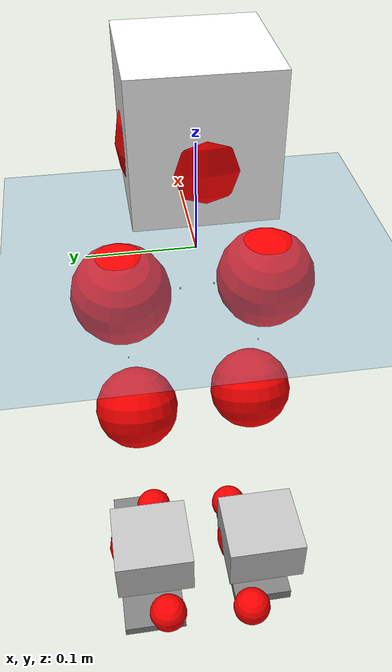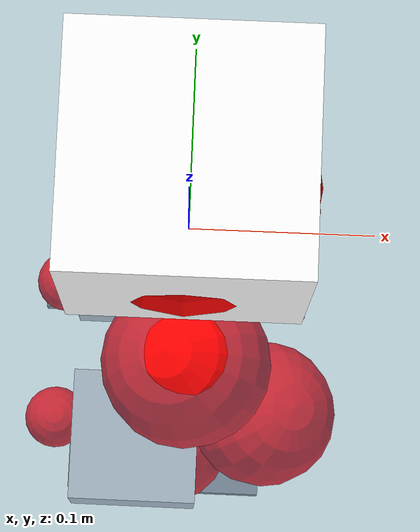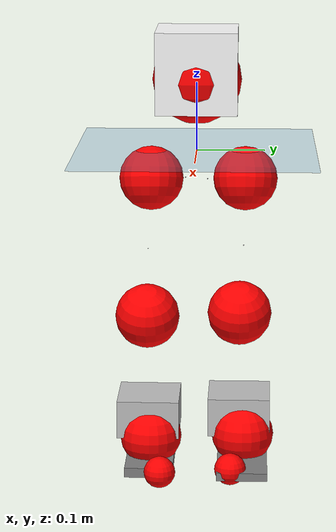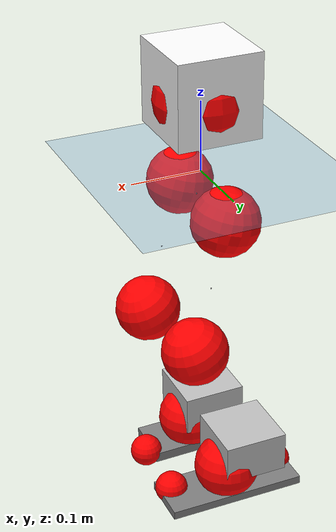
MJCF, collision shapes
<mujoco model="pi_12dof_release_v1">
  <compiler angle="radian" assetdir="assets" balanceinertia="true" inertiafromgeom="false"/>

  <option timestep="0.005" density="1.2" viscosity="2e-05"/>

  <size nkey="1"/>

  <visual>
    <quality shadowsize="8192"/>
    <map shadowclip="0.5"/>
  </visual>

  <default>
    <default class="/">
      <joint armature="0.01" damping="0.01" frictionloss="0.01"/>
      <geom contype="0" conaffinity="0" group="1" solref="-1000 -80"/>
      <site size="0.01 0.005 0.005" group="5"/>
      <general forcelimited="true" biastype="affine" gainprm="20" biasprm="0 -20 -0.5"/>
      <default class="foot">
        <geom size="0.0845 0.036 0.005" type="box" condim="6" group="4" priority="1" friction="0.9 0.2 0.2" solimp="0.015 1 0.005"/>
      </default>
      <default class="reward_collision_sphere">
        <geom group="5" rgba="1 0 0 1"/>
      </default>
    </default>
  </default>

  <asset>
    <texture type="skybox" colorspace="auto" name="//unnamed_texture_0" builtin="gradient" rgb1="0.95 0.95 0.95" rgb2="0.95 0.95 0.95" width="100" height="600"/>
    <texture type="2d" colorspace="auto" name="texplane" builtin="checker" rgb1="0.345 0.575 0.748" rgb2="0.345 0.575 0.748" markrgb="1 1 1" width="512" height="512"/>
    <material name="MatPlane" class="/" texture="texplane" texuniform="true" texrepeat="2 2" specular="0.9"/>
    <mesh name="baselink_1" class="/" file="baselink_1.STL"/>
    <mesh name="r_hip_pitch_link" class="/" file="r_hip_pitch_link.STL"/>
    <mesh name="r_hip_roll_link" class="/" file="r_hip_roll_link.STL"/>
    <mesh name="r_thigh_link" class="/" file="r_thigh_link.STL"/>
    <mesh name="r_calf_link" class="/" file="r_calf_link.STL"/>
    <mesh name="r_ankle_pitch_link" class="/" file="r_ankle_pitch_link.STL"/>
    <mesh name="r_ankle_roll_link" class="/" file="r_ankle_roll_link.STL"/>
    <mesh name="l_hip_pitch_link" class="/" file="l_hip_pitch_link.STL"/>
    <mesh name="l_hip_roll_link" class="/" file="l_hip_roll_link.STL"/>
    <mesh name="l_thigh_link" class="/" file="l_thigh_link.STL"/>
    <mesh name="l_calf_link" class="/" file="l_calf_link.STL"/>
    <mesh name="l_ankle_pitch_link" class="/" file="l_ankle_pitch_link.STL"/>
    <mesh name="l_ankle_roll_link" class="/" file="l_ankle_roll_link.STL"/>
  </asset>

  <worldbody>
    <geom name="floor" class="/" size="100 100 0.125" type="plane" group="0" material="MatPlane"/>
    <light name="toplight_shadow" class="/" pos="0 0 5" dir="0.0990148 0.0990148 -0.990148" type="directional" ambient="0.04 0.04 0.04" diffuse="0.55 0.55 0.55" specular="0.12 0.12 0.12"/>
    <light name="toplight_fill" class="/" pos="0 0 5" dir="0.0990148 0.0990148 -0.990148" type="directional" castshadow="false" ambient="0.04 0.04 0.04" diffuse="0.3 0.3 0.3" specular="0.08 0.08 0.08"/>
    <body name="trunk" pos="-0.000483649 0.000302767 0.0043896" quat="1 -0.000850065 -2.73423e-05 -8.47852e-05">
      <inertial pos="0.00507619 -0.00805188 0.0523953" quat="0.694792 0.010566 0.00846987 0.719084" mass="3.70797" diaginertia="0.0266989 0.00483899 0.0252182"/>
      <joint name="//unnamed_joint_0" type="free"/>
      <geom name="//unnamed_geom_1" class="/" type="mesh" density="0" rgba="1 1 1 1" mesh="baselink_1"/>
      <geom name="//unnamed_geom_2" class="/" size="0.0591319 0.0591319 0.0591319" pos="0 0 0.114743" type="box" rgba="1 1 1 1"/>
      <geom name="//unnamed_geom_3" class="reward_collision_sphere" size="0.065045" pos="0 0 0.1004"/>
      <site name="imu" class="/" pos="-0.00122446 0.0124536 -0.00280513" size="0.0118264"/>
      <camera name="track" class="/" pos="0 -1.7497 0" quat="0.707107 0.707107 0 0" mode="trackcom"/>
      <camera name="ego_camera" class="/" pos="0.0929081 0 0.258172" quat="-0.5 -0.5 0.5 0.5"/>
      <body name="r_hip_pitch_link" pos="-0.000574217 -0.0168504 -0.04548" quat="0.992172 0.000289873 -0.124877 -7.85993e-05">
        <inertial pos="0.00757888 -0.0515746 0.00175831" quat="-0.0208991 0.70645 -0.0196551 0.707181" mass="0.604194" diaginertia="0.000315248 5.14612e-05 0.000484864"/>
        <joint name="r_hip_pitch_joint" class="/" pos="0 0 0" axis="0.0242293 -0.999162 0.0329788" range="-1.78096 1.32883" armature="0.013388" damping="0.0225851" frictionloss="0.0147428"/>
        <geom name="//unnamed_geom_4" class="/" type="mesh" density="0" rgba="0.75294 0.75294 0.75294 1" mesh="r_hip_pitch_link"/>
        <geom name="//unnamed_geom_5" class="/" size="0.000591319 0.000591319 0.000591319" type="box" rgba="0.75294 0.75294 0.75294 1"/>
        <body name="r_hip_roll_link" pos="0.00218454 -0.0504297 -0.00153609" quat="1 4.5754e-06 2.87512e-06 -3.13501e-06">
          <inertial pos="-0.00180467 -0.0024028 -0.0847351" quat="0.705123 -0.079333 -0.0734624 0.700794" mass="0.705405" diaginertia="0.000956096 0.000144599 0.000940302"/>
          <joint name="r_hip_roll_joint" class="/" pos="0 0 0" axis="-0.999675 -0.0221105 -0.0126627" stiffness="0.00828349" range="-0.11446 0.455993" armature="0.0108124" damping="0.0604206" frictionloss="0.0102278"/>
          <geom name="//unnamed_geom_6" class="/" type="mesh" density="0" rgba="0.75294 0.75294 0.75294 1" mesh="r_hip_roll_link"/>
          <geom name="//unnamed_geom_7" class="/" size="0.000591319 0.000591319 0.000591319" type="box" rgba="0.75294 0.75294 0.75294 1"/>
          <geom name="//unnamed_geom_8" class="reward_collision_sphere" size="0.0473055"/>
          <body name="r_thigh_link" pos="0.00122695 -0.00410095 -0.104561" quat="0.999993 -0.00287927 0.00238891 -0.000313744">
            <inertial pos="-0.00101234 0.000750019 -0.0697269" quat="0.738813 0.673909 -0.000507197 0.000961149" mass="0.19877" diaginertia="0.000361944 5.04034e-05 0.000382193"/>
            <joint name="r_thigh_joint" class="/" pos="0 0 0" axis="-0.000578269 1.52478e-05 -1" range="-0.309558 0.681297" armature="0.00829714" damping="0.00390816" frictionloss="0.0125416"/>
            <geom name="//unnamed_geom_9" class="/" type="mesh" density="0" rgba="0.75294 0.75294 0.75294 1" mesh="r_thigh_link"/>
            <geom name="//unnamed_geom_10" class="/" size="0.000591319 0.000591319 0.000591319" type="box" rgba="0.75294 0.75294 0.75294 1"/>
            <body name="r_calf_link" pos="-0.000632796 0.000490886 -0.0992839" quat="0.94673 -2.02185e-05 0.322028 -0.00038468">
              <inertial pos="-0.00250524 0.000856931 -0.101694" quat="0.999976 -0.00294809 0.00269665 0.00569519" mass="1.46859" diaginertia="0.010894 0.00199772 0.00104953"/>
              <joint name="r_calf_joint" class="/" pos="0 0 0" axis="-0.026689 -0.998938 0.0375476" range="-1.62583 0.639715" armature="0.011811" damping="0.0142935" frictionloss="0.0115754"/>
              <geom name="//unnamed_geom_11" class="/" type="mesh" density="0" rgba="0.75294 0.75294 0.75294 1" mesh="r_calf_link"/>
              <geom name="//unnamed_geom_12" class="/" size="0.000591319 0.000591319 0.000591319" type="box" rgba="0.75294 0.75294 0.75294 1"/>
              <geom name="//unnamed_geom_13" class="reward_collision_sphere" size="0.0473055"/>
              <body name="r_ankle_pitch_link" pos="-0.00901654 -0.00262398 -0.19998" quat="0.980064 3.28928e-05 -0.198681 0.000107178">
                <inertial pos="0.00671779 0.00128289 -1.88232e-05" quat="0.00262914 0.706703 -0.00388663 0.707495" mass="0.263678" diaginertia="0.000869263 0.000102106 0.0006546"/>
                <joint name="r_ankle_pitch_joint" class="/" pos="0 0 0" axis="0.00589018 -0.999964 -0.00610965" stiffness="0.0080369" range="-1.22623 0.475423" armature="0.0113246" damping="0" frictionloss="0.00813614"/>
                <geom name="//unnamed_geom_14" class="/" type="mesh" density="0" rgba="0.75294 0.75294 0.75294 1" mesh="r_ankle_pitch_link"/>
                <geom name="//unnamed_geom_15" class="/" size="0.0461228 0.0473055 0.0295659" type="box" rgba="0.75294 0.75294 0.75294 1"/>
                <body name="r_ankle_roll_link" pos="0.0852449 0.00373061 -0.00259242" quat="1 0.000545992 0.000114493 0.000368326">
                  <inertial pos="-0.0287098 -0.000876253 -0.0294407" quat="0.560112 0.431217 0.432528 0.559684" mass="0.965662" diaginertia="0.00318974 0.000519564 0.00169104"/>
                  <joint name="r_ankle_roll_joint" class="/" pos="0 0 0" axis="-0.99996 -0.00307882 -0.00835774" range="-0.112054 0.120229" armature="0.0118095" damping="0.00588802" frictionloss="0.006443"/>
                  <geom name="//unnamed_geom_16" class="/" type="mesh" density="0" rgba="0.75294 0.75294 0.75294 1" mesh="r_ankle_roll_link"/>
                  <geom name="//unnamed_geom_17" class="/" type="mesh" rgba="0.75294 0.75294 0.75294 1" mesh="r_ankle_roll_link"/>
                  <geom name="right_foot" class="foot" size="0.0732222 0.0362426 0.00742663" pos="-0.0631775 0 -0.0631086"/>
                  <geom name="//unnamed_geom_19" class="reward_collision_sphere" size="0.0473055" pos="-0.0619387 0 -0.0286857"/>
                  <geom name="//unnamed_geom_20" class="reward_collision_sphere" size="0.0236527" pos="0.0185816 0.017497 -0.0573715"/>
                  <geom name="//unnamed_geom_21" class="reward_collision_sphere" size="0.0236527" pos="-0.148653 0.017497 -0.0573715"/>
                  <site name="right_foot" class="foot" pos="-0.0631775 0 -0.0631086" size="0.0118264"/>
                </body>
              </body>
            </body>
          </body>
        </body>
      </body>
      <body name="l_hip_pitch_link" pos="-0.000503226 0.0154971 -0.047449" quat="0.99214 -0.000455769 -0.125131 0.000669408">
        <inertial pos="0.00291225 0.0537906 0.00130728" quat="-0.0201053 0.729425 0.060092 0.681119" mass="0.725593" diaginertia="0.000375041 5.15804e-05 0.000623998"/>
        <joint name="l_hip_pitch_joint" class="/" pos="0 0 0" axis="0.0136098 0.999885 0.00666908" range="-1.35599 1.89912" armature="0.00984483" damping="0" frictionloss="0.015396"/>
        <geom name="//unnamed_geom_22" class="/" type="mesh" density="0" rgba="0.75294 0.75294 0.75294 1" mesh="l_hip_pitch_link"/>
        <geom name="//unnamed_geom_23" class="/" size="0.000591319 0.000591319 0.000591319" type="box" rgba="0.75294 0.75294 0.75294 1"/>
        <body name="l_hip_roll_link" pos="-0.00115203 0.0560617 0.000952452" quat="0.999999 -0.000243043 -0.000559828 -0.000826428">
          <inertial pos="-0.00253077 0.00434775 -0.0872374" quat="0.697224 -0.0739184 -0.0798582 0.708546" mass="0.622067" diaginertia="0.000861877 0.000132685 0.00068881"/>
          <joint name="l_hip_roll_joint" class="/" pos="0 0 0" axis="-0.999975 0.000764507 -0.00700956" stiffness="0.00158426" range="-0.687978 0.271509" armature="0.0120256" damping="0" frictionloss="0.0130201"/>
          <geom name="//unnamed_geom_24" class="/" type="mesh" density="0" rgba="0.75294 0.75294 0.75294 1" mesh="l_hip_roll_link"/>
          <geom name="//unnamed_geom_25" class="/" size="0.000591319 0.000591319 0.000591319" type="box" rgba="0.75294 0.75294 0.75294 1"/>
          <geom name="//unnamed_geom_26" class="reward_collision_sphere" size="0.0473055"/>
          <body name="l_thigh_link" pos="-0.0050658 -0.00168913 -0.0987358" quat="0.999996 0.00043418 0.0022593 -0.00182625">
            <inertial pos="-0.00527144 -0.00105981 -0.064057" quat="0.675414 0.737438 -0.000554593 0.000730481" mass="0.177008" diaginertia="0.000318373 3.85459e-05 0.000269223"/>
            <joint name="l_thigh_joint" class="/" pos="0 0 0" axis="-0.003329 -0.000733377 -0.999994" stiffness="0.00422511" range="-0.589921 0.421786" armature="0.012665" damping="0" frictionloss="0.0144417"/>
            <geom name="//unnamed_geom_27" class="/" type="mesh" density="0" rgba="0.75294 0.75294 0.75294 1" mesh="l_thigh_link"/>
            <geom name="//unnamed_geom_28" class="/" size="0.000591319 0.000591319 0.000591319" type="box" rgba="0.75294 0.75294 0.75294 1"/>
            <body name="l_calf_link" pos="-0.00323845 -0.00510563 -0.100422" quat="0.948646 0.000132996 0.31634 -0.00085764">
              <inertial pos="0.00160851 0.00135368 -0.0985478" quat="0.999141 -0.00927254 -0.00637686 -0.039875" mass="1.39773" diaginertia="0.0103008 0.0019206 0.00111721"/>
              <joint name="l_calf_joint" class="/" pos="0 0 0" axis="-0.0104618 0.999906 0.00882873" range="-0.630118 1.6875" armature="0.0110036" damping="0.0122351" frictionloss="0.0139002"/>
              <geom name="//unnamed_geom_29" class="/" type="mesh" density="0" rgba="0.75294 0.75294 0.75294 1" mesh="l_calf_link"/>
              <geom name="//unnamed_geom_30" class="/" size="0.000591319 0.000591319 0.000591319" type="box" rgba="0.75294 0.75294 0.75294 1"/>
              <geom name="//unnamed_geom_31" class="reward_collision_sphere" size="0.0473055"/>
              <body name="l_ankle_pitch_link" pos="-0.000789918 -0.000424474 -0.192282" quat="0.980212 0.000733054 -0.197949 1.4424e-06">
                <inertial pos="0.0060937 -0.0103566 -0.00263913" quat="-0.0212666 0.712417 0.0194251 0.701165" mass="0.326523" diaginertia="0.000980201 0.000124899 0.000793762"/>
                <joint name="l_ankle_pitch_joint" class="/" pos="0 0 0" axis="-0.00523072 0.99924 -0.038617" range="-0.535925 1.32556" armature="0.0126219" damping="0.0364402" frictionloss="0.0112308"/>
                <geom name="//unnamed_geom_32" class="/" type="mesh" density="0" rgba="0.75294 0.75294 0.75294 1" mesh="l_ankle_pitch_link"/>
                <geom name="//unnamed_geom_33" class="/" size="0.0461228 0.0473055 0.0295659" type="box" rgba="0.75294 0.75294 0.75294 1"/>
                <body name="l_ankle_roll_link" pos="0.0891389 0.00580187 -0.00079412" quat="0.999997 -0.00151707 -0.00140669 0.00115061">
                  <inertial pos="-0.0312586 -0.00232814 -0.0206563" quat="0.546885 0.435177 0.468935 0.540034" mass="0.958884" diaginertia="0.00344334 0.000540246 0.00154915"/>
                  <joint name="l_ankle_roll_joint" class="/" pos="0 0 0" axis="-0.998857 0.0452449 0.015399" stiffness="0.00487426" range="-0.150108 0.350888" armature="0.0116795" damping="0.0187496" frictionloss="0.0173906"/>
                  <geom name="//unnamed_geom_34" class="/" type="mesh" density="0" rgba="0.75294 0.75294 0.75294 1" mesh="l_ankle_roll_link"/>
                  <geom name="//unnamed_geom_35" class="/" type="mesh" rgba="0.75294 0.75294 0.75294 1" mesh="l_ankle_roll_link"/>
                  <geom name="left_foot" class="foot" size="0.100878 0.0378479 0.00617006" pos="-0.0631775 0 -0.0631086"/>
                  <geom name="//unnamed_geom_37" class="reward_collision_sphere" size="0.0473055" pos="-0.0619387 0 -0.0286857"/>
                  <geom name="//unnamed_geom_38" class="reward_collision_sphere" size="0.0236527" pos="0.0185816 -0.017497 -0.0573715"/>
                  <geom name="//unnamed_geom_39" class="reward_collision_sphere" size="0.0236527" pos="-0.148653 -0.017497 -0.0573715"/>
                  <site name="left_foot" class="foot" pos="-0.0631775 0 -0.0631086" size="0.0118264"/>
                </body>
              </body>
            </body>
          </body>
        </body>
      </body>
    </body>
  </worldbody>

  <contact>
    <pair class="/" geom1="floor" geom2="right_foot" name="//unnamed_contact_1"/>
    <pair class="/" geom1="floor" geom2="left_foot" name="//unnamed_contact_0"/>
  </contact>

  <actuator>
    <general name="r_hip_pitch_joint" class="/" joint="r_hip_pitch_joint" forcerange="-28.9982 28.9982" gainprm="24.2374" biasprm="0 -24.2374 -0.613197"/>
    <general name="r_hip_roll_joint" class="/" joint="r_hip_roll_joint" forcerange="-24.3652 24.3652" gainprm="24.2374" biasprm="0 -24.2374 -0.613197"/>
    <general name="r_thigh_joint" class="/" joint="r_thigh_joint" forcerange="-27.8765 27.8765" gainprm="24.2374" biasprm="0 -24.2374 -0.613197"/>
    <general name="r_calf_joint" class="/" joint="r_calf_joint" forcerange="-24.6652 24.6652" gainprm="24.2374" biasprm="0 -24.2374 -0.613197"/>
    <general name="r_ankle_pitch_joint" class="/" joint="r_ankle_pitch_joint" forcerange="-21.5338 21.5338" gainprm="24.2374" biasprm="0 -24.2374 -0.613197"/>
    <general name="r_ankle_roll_joint" class="/" joint="r_ankle_roll_joint" forcerange="-18.0658 18.0658" gainprm="24.2374" biasprm="0 -24.2374 -0.613197"/>
    <general name="l_hip_pitch_joint" class="/" joint="l_hip_pitch_joint" forcerange="-27.2497 27.2497" gainprm="24.2374" biasprm="0 -24.2374 -0.613197"/>
    <general name="l_hip_roll_joint" class="/" joint="l_hip_roll_joint" forcerange="-33.4962 33.4962" gainprm="24.2374" biasprm="0 -24.2374 -0.613197"/>
    <general name="l_thigh_joint" class="/" joint="l_thigh_joint" forcerange="-25.5294 25.5294" gainprm="24.2374" biasprm="0 -24.2374 -0.613197"/>
    <general name="l_calf_joint" class="/" joint="l_calf_joint" forcerange="-24.6012 24.6012" gainprm="24.2374" biasprm="0 -24.2374 -0.613197"/>
    <general name="l_ankle_pitch_joint" class="/" joint="l_ankle_pitch_joint" forcerange="-24.5657 24.5657" gainprm="24.2374" biasprm="0 -24.2374 -0.613197"/>
    <general name="l_ankle_roll_joint" class="/" joint="l_ankle_roll_joint" forcerange="-26.2992 26.2992" gainprm="24.2374" biasprm="0 -24.2374 -0.613197"/>
  </actuator>

  <sensor>
    <gyro site="imu" name="imu_angular_velocity"/>
    <velocimeter site="imu" name="imu_linear_velocity"/>
    <framelinvel objtype="site" objname="left_foot" name="left_foot_global_linear_velocity"/>
    <framelinvel objtype="site" objname="right_foot" name="right_foot_global_linear_velocity"/>
  </sensor>

  <keyframe>
    <key name="home" qpos="0 0 0.291 1 0 0 0 0.4 0 0 -0.8 0.4 0 -0.4 0 0 0.8 -0.4 0"/>
  </keyframe>
</mujoco>
